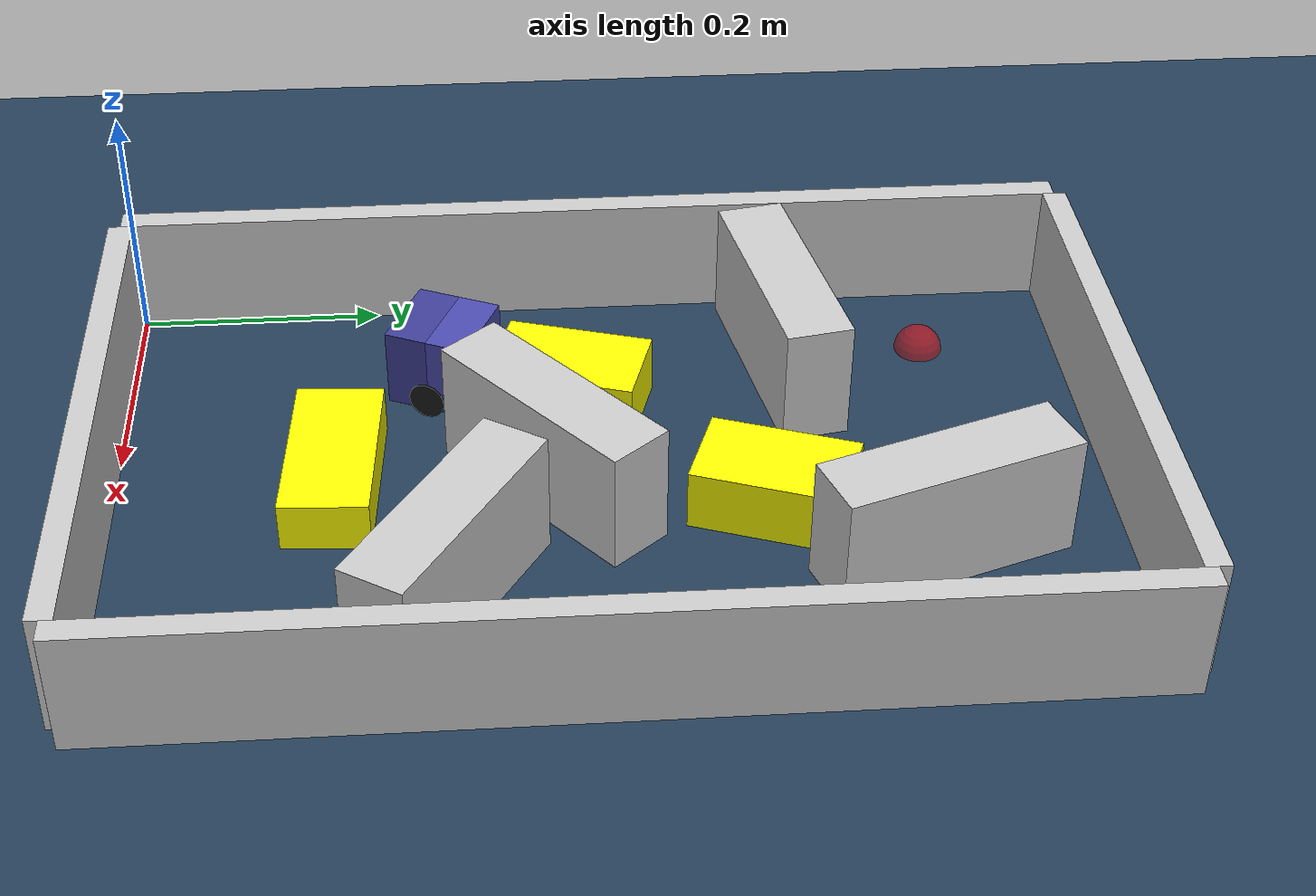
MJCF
<?xml version='1.0' encoding='utf-8'?>
<mujoco model="real_buildable">
  <compiler angle="degree" />
  <option timestep="0.002" integrator="implicitfast" iterations="100" cone="elliptic" />
  <default>
    <geom density="1" />
  </default>
  <asset>
    <texture builtin="gradient" height="3072" rgb1="0.3 0.5 0.7" rgb2="0 0 0" type="skybox" width="512" />
    <texture builtin="checker" height="300" mark="edge" markrgb="0.8 0.8 0.8" name="groundplane" rgb1="0.2 0.3 0.4" rgb2="0.1 0.2 0.3" type="2d" width="300" />
    <material name="groundplane" reflectance="0.2" texrepeat="5 5" texture="groundplane" texuniform="true" />
  </asset>
  <worldbody>
    <light dir="0 0 -1" directional="true" pos="0 0 1.5" />
    <geom name="floor" type="plane" condim="4" friction="0.5 0.005 0.001" material="groundplane" size="0 0 0.05" />
    <body name="walls">
      <geom name="wall_boundary_left" type="box" condim="4" friction="1.0 0.005 0.0001" rgba="0.8 0.8 0.8 1" pos="-0.010000 0.387500 0.050000" euler="0 0 0.000000" size="0.010000 0.397500 0.050000" />
      <geom name="wall_boundary_right" type="box" condim="4" friction="1.0 0.005 0.0001" rgba="0.8 0.8 0.8 1" pos="0.500000 0.387500 0.050000" euler="0 0 0.000000" size="0.010000 0.397500 0.050000" />
      <geom name="wall_boundary_bottom" type="box" condim="4" friction="1.0 0.005 0.0001" rgba="0.8 0.8 0.8 1" pos="0.245000 -0.010000 0.050000" euler="0 0 0.000000" size="0.245000 0.010000 0.050000" />
      <geom name="wall_boundary_top" type="box" condim="4" friction="1.0 0.005 0.0001" rgba="0.8 0.8 0.8 1" pos="0.245000 0.785000 0.050000" euler="0 0 0.000000" size="0.245000 0.010000 0.050000" />
      <geom name="wall_inner_1" type="box" condim="4" friction="1.0 0.005 0.0001" rgba="0.8 0.8 0.8 1" pos="0.255217 0.341167 0.050000" euler="0 0 39.784057" size="0.097500 0.027500 0.050000" />
      <geom name="wall_inner_2" type="box" condim="4" friction="1.0 0.005 0.0001" rgba="0.8 0.8 0.8 1" pos="0.384302 0.259574 0.050000" euler="0 0 -32.672285" size="0.097500 0.027500 0.050000" />
      <geom name="wall_inner_3" type="box" condim="4" friction="1.0 0.005 0.0001" rgba="0.8 0.8 0.8 1" pos="0.101000 0.538000 0.050000" euler="0 0 10.000000" size="0.097500 0.027500 0.050000" />
      <geom name="wall_inner_4" type="box" condim="4" friction="1.0 0.005 0.0001" rgba="0.8 0.8 0.8 1" pos="0.354000 0.628000 0.050000" euler="0 0 109.100000" size="0.097500 0.027500 0.050000" />
    </body>
    <body name="car" pos="0.12746802939529425 0.25841794832273257 0.01" quat="0.83847267468508047 0 0 0.54494364278010188">
      <freejoint name="car_freejoint" />
      <inertial pos="0 0 0.0375" mass="0.35" diaginertia="0.000266 0.000266 0.000286" />
      <geom name="front_chassis_collision" type="box" pos="0.0175 0 0.0375" size="0.0175 0.035 0.0325" rgba="0.3 0.3 0.7 1" />
      <geom name="rear_chassis_collision" type="box" pos="-0.0175 0 0.0375" size="0.0175 0.035 0.0325" rgba="0.25 0.25 0.6 1" />
      <geom name="front_marker" type="box" pos="0.034 0 0.0505" size="0.002 0.015 0.01" rgba="1 0.2 0.2 1" contype="0" conaffinity="0" />
      <body name="rear_support_body" pos="-0.03 0 0.0025">
        <joint name="rear_caster_joint" type="ball" damping="0.0001" />
        <inertial pos="0 0 0" mass="0.025" diaginertia="0.000001 0.000001 0.000001" />
        <geom name="rear_support" type="sphere" pos="0 0 0" size="0.0025" friction="0 0 0" rgba="0.7 0.1 0.1 1" />
      </body>
      <body name="front_support_body" pos="0.03 0 0.0025">
        <joint name="front_caster_joint" type="ball" damping="0.0001" />
        <inertial pos="0 0 0" mass="0.025" diaginertia="0.000001 0.000001 0.000001" />
        <geom name="front_support" type="sphere" pos="0 0 0" size="0.0025" friction="0 0 0" rgba="0.1 0.7 0.1 1" />
      </body>
      <body name="left_wheel" pos="0 0.0375 0.015">
        <inertial pos="0 0 0" mass="0.05" diaginertia="0.000003 0.000006 0.000003" />
        <joint name="left_wheel_joint" type="hinge" axis="0 1 0" damping="0.01" armature="0.0001" />
        <geom name="left_wheel_collision" type="cylinder" size="0.015 0.0005" euler="90 0 0" rgba="0.1 0.1 0.1 1" />
      </body>
      <body name="right_wheel" pos="0 -0.0375 0.015">
        <inertial pos="0 0 0" mass="0.05" diaginertia="0.000003 0.000006 0.000003" />
        <joint name="right_wheel_joint" type="hinge" axis="0 1 0" damping="0.01" armature="0.0001" />
        <geom name="right_wheel_collision" type="cylinder" size="0.015 0.0005" euler="90 0 0" rgba="0.1 0.1 0.1 1" />
      </body>
    </body>
    <body name="obstacle_0_movable">
      <geom name="obstacle_0_movable" condim="4" pos="0.14193047046087459 0.36025477284572194 0.025000000000000001" friction="1 0.005 0.0001" rgba="1 1 0 1" size="0.037500 0.060000 0.025000" type="box" mass="0.1" quat="0.14865660907704803 0 0 0.98888887777025469" />
      <joint type="free" />
    </body>
    <body name="obstacle_1_movable">
      <geom name="obstacle_1_movable" condim="4" pos="0.28799999999999809 0.50999999999999934 0.025000000000000001" friction="1 0.005 0.0001" rgba="1 1 0 1" size="0.037500 0.060000 0.025000" type="box" mass="0.1" quat="0.98465584142245077 0 0 -0.17450751832699199" />
      <joint type="free" />
    </body>
    <body name="obstacle_2_movable">
      <geom name="obstacle_2_movable" condim="4" pos="0.2361241431873452 0.17031863726519064 0.02" friction="1 0.005 0.0001" rgba="1 1 0 1" size="0.035000 0.075000 0.020000" type="box" mass="0.1" quat="0.72863315520316296 0 0 0.68490417223045397" />
      <joint type="free" />
    </body>
    <site name="goal" type="sphere" pos="0.080000 0.660000 0.0" size="0.02" rgba="1 0 0 0.5" />
  </worldbody>
  <actuator>
    <velocity name="left_wheel_drive" joint="left_wheel_joint" ctrlrange="-25 25" kv="0.75" forcerange="-0.5 0.5" />
    <velocity name="right_wheel_drive" joint="right_wheel_joint" ctrlrange="-25 25" kv="0.75" forcerange="-0.5 0.5" />
  </actuator>
</mujoco>
